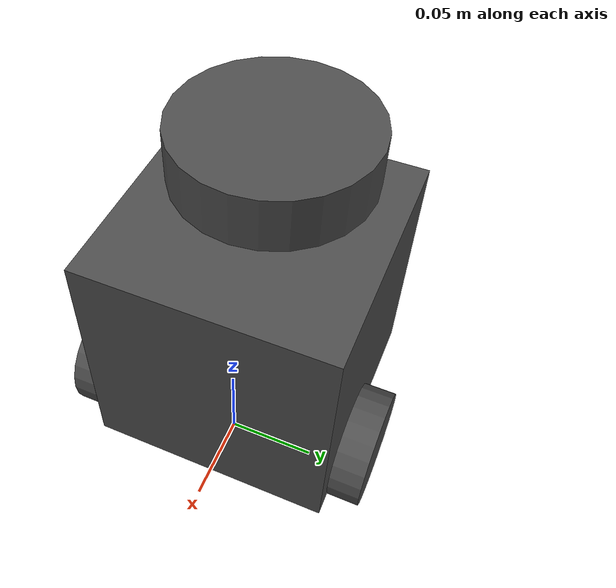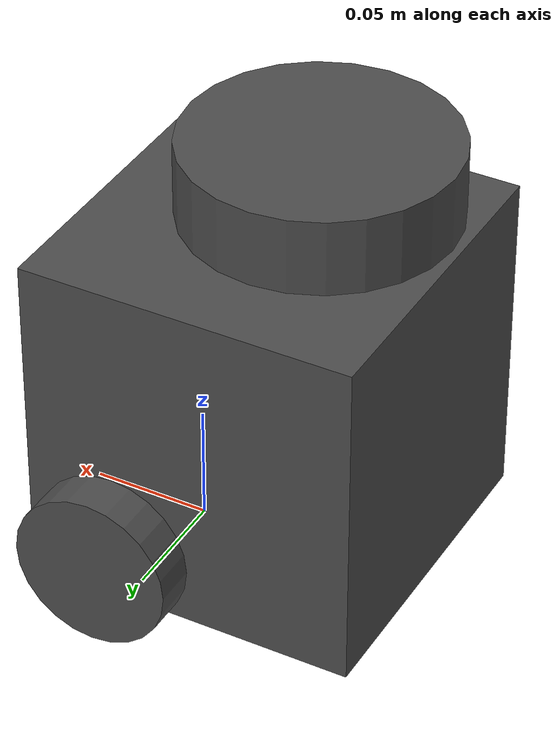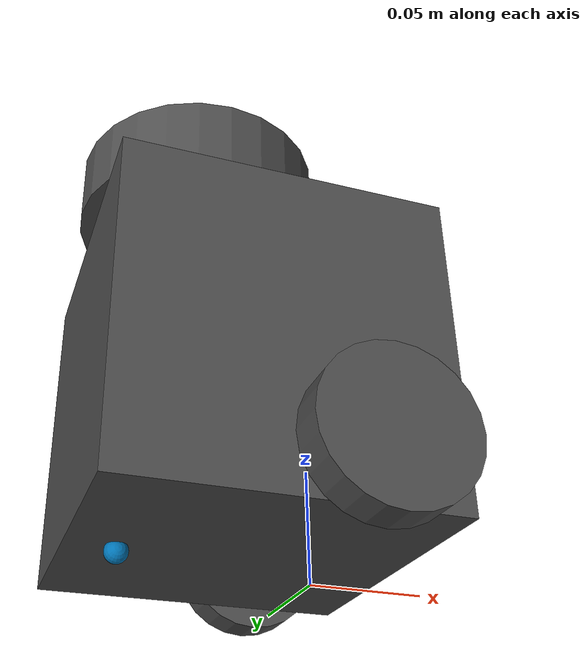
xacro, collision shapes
<?xml version="1.0"?>
<robot xmlns:xacro="http://www.ros.org/wiki/xacro" name="turtlebot3_burger">

  <material name="dark">
    <color rgba="0.3 0.3 0.3 1.0"/>
  </material>

  <xacro:arg name="model_name" default="tb3"/>

  <xacro:include filename="robot_core.xacro" />
  <xacro:include filename="robot_sensors.xacro" />
  <xacro:include filename="gz_control.xacro" />

  <xacro:macro name="tb3_robot" params="">
    <xacro:tb3_core/>
    <xacro:tb3_sensors model_name="$(arg model_name)"/>
    <xacro:tb3_gz_control model_name="$(arg model_name)"/>
  </xacro:macro>

  <xacro:tb3_robot/>

</robot>

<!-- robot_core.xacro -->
<robot xmlns:xacro="http://www.ros.org/wiki/xacro">

  <!-- Constants -->
  <xacro:property name="M_PI" value="3.1415926535897931"/>

  <!-- Robot mechanical and kinematic properties -->
  <xacro:property name="base_width" value="0.160"/>
  <xacro:property name="base_length" value="0.178"/>
  <xacro:property name="wheel_radius" value="0.033"/>
  <xacro:property name="wheel_width" value="0.018"/>
  <xacro:property name="wheel_separation" value="0.160"/>
  <xacro:property name="wheel_joint_offset" value="0.080"/>

  <xacro:macro name="tb3_core" params="">

    <!-- Base link -->
    <link name="base_footprint"/>

    <link name="base_link">
      <visual>
        <origin xyz="-0.032 0 0.0" rpy="0 0 0"/>
        <geometry>
          <mesh filename="package://robot_description/models/turtlebot3_common/meshes/burger_base.dae"
                scale="0.001 0.001 0.001"/>
        </geometry>
        <material name="dark"/>
      </visual>

      <collision>
        <origin xyz="-0.032 0 0.070" rpy="0 0 0"/>
        <geometry>
          <box size="0.140 0.140 0.143"/>
        </geometry>
      </collision>

      <inertial>
        <origin xyz="0 0 0" rpy="0 0 0"/>
        <mass value="8.2573504e-01"/>
        <inertia ixx="2.2124416e-03" ixy="-1.2294101e-05" ixz="3.4938785e-05"
                 iyy="2.1193702e-03" iyz="-5.0120904e-06"
                 izz="2.0064271e-03" />
      </inertial>
    </link>

    <joint name="base_joint" type="fixed">
      <parent link="base_footprint"/>
      <child link="base_link"/>
      <origin xyz="0.0 0.0 0.010" rpy="0 0 0"/>
    </joint>

    <!-- Wheels -->
    <xacro:macro name="wheel" params="prefix reflect">
      <link name="wheel_${prefix}_link">
        <visual>
          <origin xyz="0 0 0" rpy="${M_PI/2} 0 0"/>
          <geometry>
            <mesh filename="package://robot_description/models/turtlebot3_common/meshes/tire.dae"
                  scale="0.001 0.001 0.001"/>
          </geometry>
          <material name="dark"/>
        </visual>

        <collision>
          <origin xyz="0 0 0" rpy="0 0 0"/>
          <geometry>
            <cylinder length="${wheel_width}" radius="${wheel_radius}"/>
          </geometry>
        </collision>

        <inertial>
          <origin xyz="0 0 0" />
          <mass value="2.8498940e-02" />
          <inertia ixx="1.1175580e-05" ixy="-4.2369783e-11" ixz="-5.9381719e-09"
                   iyy="1.1192413e-05" iyz="-1.4400107e-11"
                   izz="2.0712558e-05" />
        </inertial>
      </link>

      <joint name="wheel_${prefix}_joint" type="continuous">
        <parent link="base_link"/>
        <child link="wheel_${prefix}_link"/>
        <origin xyz="0 ${reflect*wheel_joint_offset} 0.023" rpy="-${M_PI/2} 0 0"/>
        <axis xyz="0 0 1"/>
      </joint>
    </xacro:macro>

    <xacro:wheel prefix="left"  reflect="1"/>
    <xacro:wheel prefix="right" reflect="-1"/>

    <!-- Caster wheel -->
    <link name="caster_back_link">
      <collision>
        <origin xyz="0 0 0" rpy="0 0 0"/>
        <geometry>
          <sphere radius="0.005"/>
        </geometry>
      </collision>

      <inertial>
        <origin xyz="0 0 0" />
        <mass value="0.005" />
        <inertia ixx="0.001" ixy="0.0" ixz="0.0"
                 iyy="0.001" iyz="0.0"
                 izz="0.001" />
      </inertial>
    </link>

    <joint name="caster_back_joint" type="fixed">
      <parent link="base_link"/>
      <child link="caster_back_link"/>
      <origin xyz="-0.081 0 -0.004" rpy="-${M_PI/2} 0 0"/>
    </joint>

  </xacro:macro>

</robot>

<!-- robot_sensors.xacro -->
<robot xmlns:xacro="http://www.ros.org/wiki/xacro">

  <xacro:macro name="tb3_sensors" params="model_name">

    <!-- Laser -->
    <link name="base_scan">
      <visual>
        <origin xyz="-0.032 0 0.0" rpy="0 0 0"/>
        <geometry>
          <mesh filename="package://robot_description/models/turtlebot3_common/meshes/lds.dae"
                scale="0.001 0.001 0.001"/>
        </geometry>
        <material name="dark"/>
      </visual>

      <collision>
        <origin xyz="-0.020 0 0.0" rpy="0 0 0"/>
        <geometry>
          <cylinder length="0.0315" radius="0.055"/>
        </geometry>
      </collision>

      <inertial>
        <mass value="0.114" />
        <origin xyz="0 0 0" />
        <inertia ixx="0.001" ixy="0.0" ixz="0.0"
                 iyy="0.001" iyz="0.0"
                 izz="0.001" />
      </inertial>
    </link>

    <joint name="scan_joint" type="fixed">
      <parent link="base_link"/>
      <child link="base_scan"/>
      <origin xyz="-0.032 0 0.171" rpy="0 0 0"/>
    </joint>

    <gazebo reference="base_scan">
      <sensor name="lds_sensor" type="gpu_lidar">
        <pose>0 0 0 0 0 0</pose>
        <always_on>1</always_on>
        <visualize>true</visualize>
        <update_rate>5</update_rate>
        <lidar>
          <scan>
            <horizontal>
              <samples>360</samples>
              <min_angle>0.0</min_angle>
              <max_angle>6.28319</max_angle>
            </horizontal>
          </scan>
          <range>
            <min>0.12</min>
            <max>3.5</max>
          </range>
          <noise>
            <type>gaussian</type>
            <mean>0.0</mean>
            <stddev>0.01</stddev>
          </noise>
        </lidar>

        <topic>/model/${model_name}/scan</topic>
        <gz_frame_id>${model_name}/base_scan</gz_frame_id>

      </sensor>
    </gazebo>

    <!-- IMU -->
    <link name="imu_link">
      <inertial>
        <origin xyz="0 0 0" rpy="0 0 0"/>
        <mass value="0.001"/>
        <inertia ixx="1e-6" ixy="0" ixz="0"
                iyy="1e-6" iyz="0"
                izz="1e-6"/>
      </inertial>
    </link>

    <joint name="imu_joint" type="fixed">
      <parent link="base_link"/>
      <child link="imu_link"/>
      <origin xyz="-0.032 0 0.068" rpy="0 0 0"/>
    </joint>

    <gazebo reference="imu_link">
    <sensor name="imu_sensor" type="imu">
      <always_on>1</always_on>
      <update_rate>200</update_rate>

      <topic>/model/${model_name}/imu</topic>

      <gz_frame_id>${model_name}/imu_link</gz_frame_id>
    </sensor>
  </gazebo>

  </xacro:macro>

</robot>
